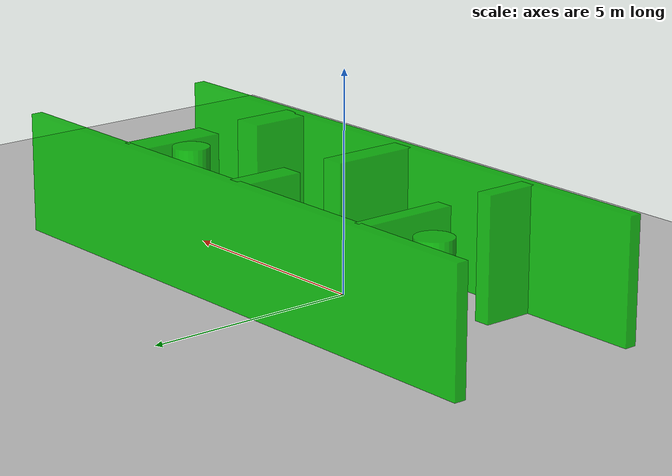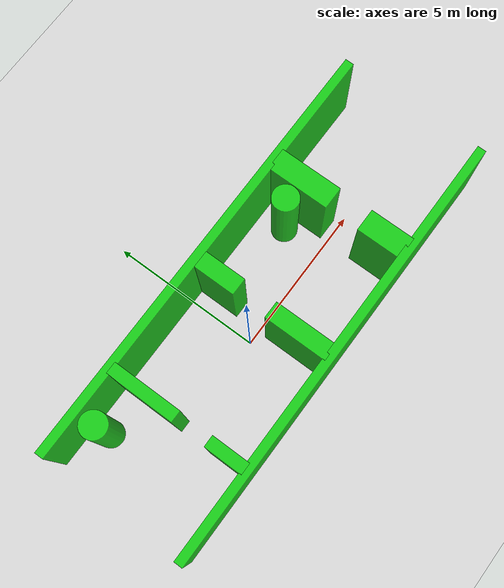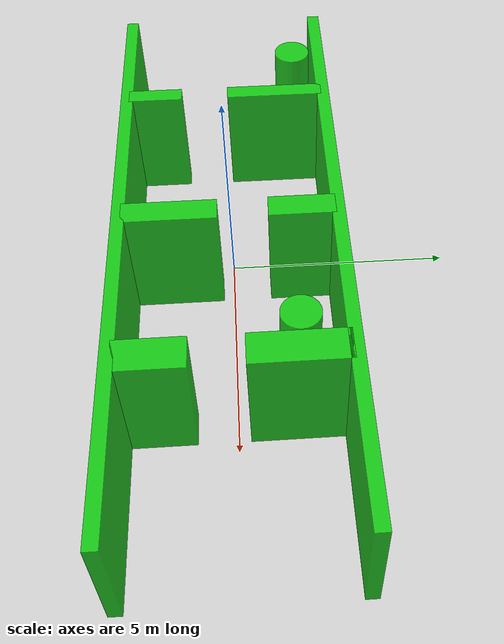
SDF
<?xml version="1.0"?>
<sdf version="1.6">
  <world name="narrow_door">
    <include><uri>model://sun</uri></include>
    <include><uri>model://ground_plane</uri></include>
    <physics name="default_physics" default="0" type="ode">
      <gravity>0 0 -9.8066</gravity>
      <ode>
        <solver><type>quick</type><iters>10</iters><sor>1.3</sor></solver>
        <constraints>
          <cfm>0</cfm>
          <erp>0.2</erp>
          <contact_max_correcting_vel>100</contact_max_correcting_vel>
          <contact_surface_layer>0.001</contact_surface_layer>
        </constraints>
      </ode>
      <max_step_size>0.004</max_step_size>
      <real_time_factor>1</real_time_factor>
      <real_time_update_rate>250</real_time_update_rate>
    </physics>
    <model name="narrow_door_obstacle_0">
      <static>true</static>
      <pose>-4.700 1.700 1.400 0 0 0</pose>
      <link name="link">
        <collision name="collision">
          <geometry><cylinder><radius>0.420</radius><length>2.800</length></cylinder></geometry>
        </collision>
        <visual name="visual">
          <geometry><cylinder><radius>0.420</radius><length>2.800</length></cylinder></geometry>
          <material><ambient>0 0.8 0 0.85</ambient><diffuse>0 0.8 0 0.85</diffuse></material>
        </visual>
      </link>
    </model>
    <model name="narrow_door_obstacle_1">
      <static>true</static>
      <pose>3.600 1.350 1.400 0 0 0</pose>
      <link name="link">
        <collision name="collision">
          <geometry><cylinder><radius>0.420</radius><length>2.800</length></cylinder></geometry>
        </collision>
        <visual name="visual">
          <geometry><cylinder><radius>0.420</radius><length>2.800</length></cylinder></geometry>
          <material><ambient>0 0.8 0 0.85</ambient><diffuse>0 0.8 0 0.85</diffuse></material>
        </visual>
      </link>
    </model>
    <model name="narrow_corridor_lower_wall">
      <static>true</static>
      <pose>1.000 -2.350 1.400 0 0 0.000</pose>
      <link name="link">
        <collision name="collision">
          <geometry><box><size>14.400 0.280 2.800</size></box></geometry>
        </collision>
        <visual name="visual">
          <geometry><box><size>14.400 0.280 2.800</size></box></geometry>
          <material><ambient>0 0.8 0 0.85</ambient><diffuse>0 0.8 0 0.85</diffuse></material>
        </visual>
      </link>
    </model>
    <model name="narrow_corridor_upper_wall">
      <static>true</static>
      <pose>1.000 2.350 1.400 0 0 0.000</pose>
      <link name="link">
        <collision name="collision">
          <geometry><box><size>14.400 0.280 2.800</size></box></geometry>
        </collision>
        <visual name="visual">
          <geometry><box><size>14.400 0.280 2.800</size></box></geometry>
          <material><ambient>0 0.8 0 0.85</ambient><diffuse>0 0.8 0 0.85</diffuse></material>
        </visual>
      </link>
    </model>
    <model name="narrow_door_1_lower_leaf">
      <static>true</static>
      <pose>-3.200 -1.675 1.400 0 0 0.000</pose>
      <link name="link">
        <collision name="collision">
          <geometry><box><size>0.380 1.250 2.800</size></box></geometry>
        </collision>
        <visual name="visual">
          <geometry><box><size>0.380 1.250 2.800</size></box></geometry>
          <material><ambient>0 0.8 0 0.85</ambient><diffuse>0 0.8 0 0.85</diffuse></material>
        </visual>
      </link>
    </model>
    <model name="narrow_door_1_upper_leaf">
      <static>true</static>
      <pose>-3.200 1.175 1.400 0 0 0.000</pose>
      <link name="link">
        <collision name="collision">
          <geometry><box><size>0.380 2.250 2.800</size></box></geometry>
        </collision>
        <visual name="visual">
          <geometry><box><size>0.380 2.250 2.800</size></box></geometry>
          <material><ambient>0 0.8 0 0.85</ambient><diffuse>0 0.8 0 0.85</diffuse></material>
        </visual>
      </link>
    </model>
    <model name="narrow_door_2_lower_leaf">
      <static>true</static>
      <pose>0.700 -1.275 1.400 0 0 0.000</pose>
      <link name="link">
        <collision name="collision">
          <geometry><box><size>0.550 2.050 2.800</size></box></geometry>
        </collision>
        <visual name="visual">
          <geometry><box><size>0.550 2.050 2.800</size></box></geometry>
          <material><ambient>0 0.8 0 0.85</ambient><diffuse>0 0.8 0 0.85</diffuse></material>
        </visual>
      </link>
    </model>
    <model name="narrow_door_2_upper_leaf">
      <static>true</static>
      <pose>0.700 1.575 1.400 0 0 0.000</pose>
      <link name="link">
        <collision name="collision">
          <geometry><box><size>0.550 1.450 2.800</size></box></geometry>
        </collision>
        <visual name="visual">
          <geometry><box><size>0.550 1.450 2.800</size></box></geometry>
          <material><ambient>0 0.8 0 0.85</ambient><diffuse>0 0.8 0 0.85</diffuse></material>
        </visual>
      </link>
    </model>
    <model name="narrow_door_3_lower_leaf">
      <static>true</static>
      <pose>4.400 -1.575 1.400 0 0 0.000</pose>
      <link name="link">
        <collision name="collision">
          <geometry><box><size>0.720 1.450 2.800</size></box></geometry>
        </collision>
        <visual name="visual">
          <geometry><box><size>0.720 1.450 2.800</size></box></geometry>
          <material><ambient>0 0.8 0 0.85</ambient><diffuse>0 0.8 0 0.85</diffuse></material>
        </visual>
      </link>
    </model>
    <model name="narrow_door_3_upper_leaf">
      <static>true</static>
      <pose>4.400 1.275 1.400 0 0 0.000</pose>
      <link name="link">
        <collision name="collision">
          <geometry><box><size>0.720 2.050 2.800</size></box></geometry>
        </collision>
        <visual name="visual">
          <geometry><box><size>0.720 2.050 2.800</size></box></geometry>
          <material><ambient>0 0.8 0 0.85</ambient><diffuse>0 0.8 0 0.85</diffuse></material>
        </visual>
      </link>
    </model>
  </world>
</sdf>
